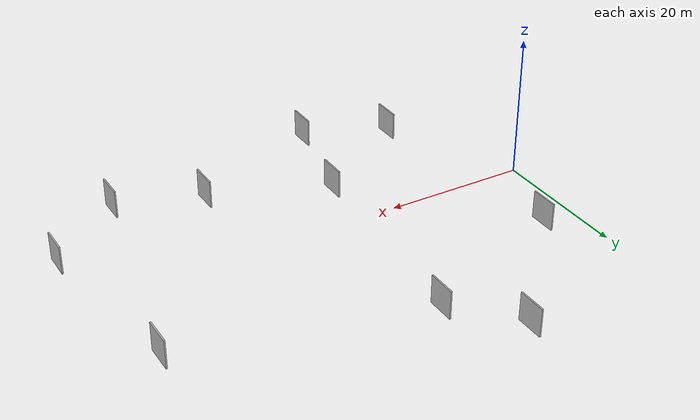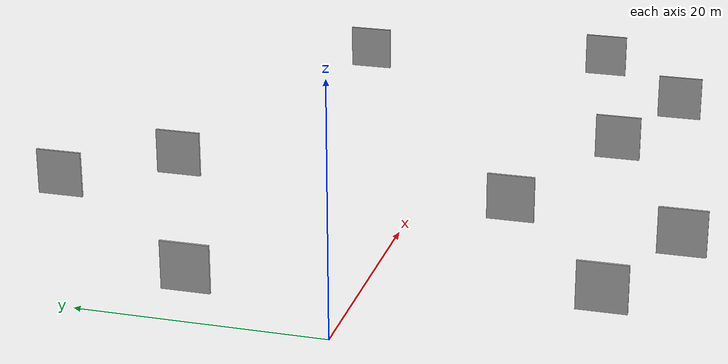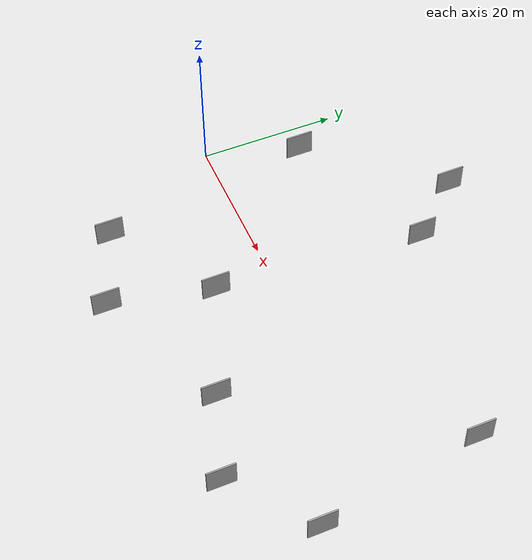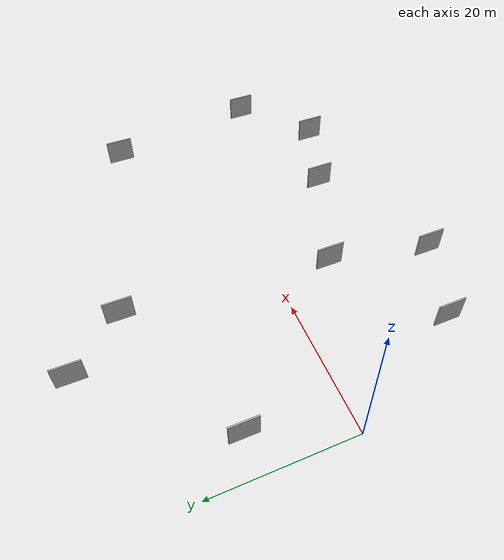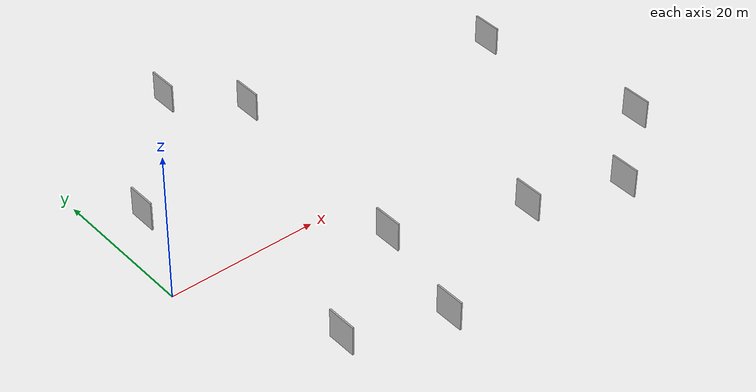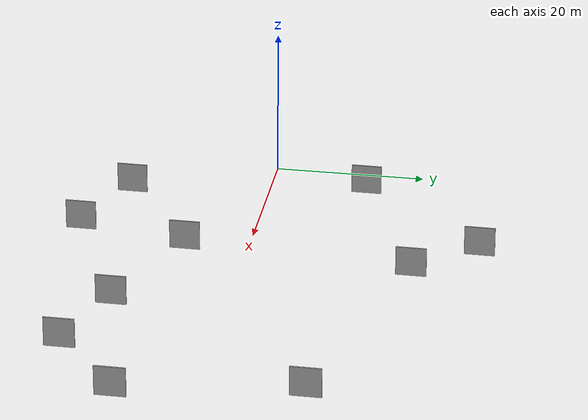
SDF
<sdf version="1.6">
 <world name="default">
  <scene>
   <sky><clouds><speed>12</speed></clouds></sky>
   <ambient>0.4 0.4 0.4 1</ambient>
   <background>0.7 0.7 0.7 1</background>
   <shadows>1</shadows>
  </scene>
  <gravity>0 0 -9.8066</gravity>
  <magnetic_field>6e-06 2.3e-05 -4.2e-05</magnetic_field>
  <physics default="0" name="default_physics" type="ode">
   <ode>
    <solver>
     <type>quick</type>
     <iters>10</iters>
     <sor>1.0</sor>
     <use_dynamic_moi_rescaling>0</use_dynamic_moi_rescaling>
    </solver>
    <constraints>
     <cfm>0</cfm>
     <erp>0.2</erp>
     <contact_max_correcting_vel>100</contact_max_correcting_vel>
     <contact_surface_layer>0.001</contact_surface_layer>
    </constraints>
   </ode>
   <max_step_size>0.004</max_step_size>
   <real_time_factor>1</real_time_factor>
   <real_time_update_rate>250</real_time_update_rate>
  </physics>
  <light name="sun" type="directional">
   <pose>0 0 10 0 0 0</pose>
   <diffuse>0.8 0.8 0.8 1</diffuse>
   <specular>0.2 0.2 0.2 1</specular>
   <attenuation>
    <range>1000</range>
    <constant>0.9</constant>
    <linear>0.01</linear>
    <quadratic>0.001</quadratic>
   </attenuation>
   <direction>-0.5 0.1 -0.9</direction>
  </light>
  <model name="grey_wall_1">
   <static>1</static>
   <pose>41.1137 -14.6424 0.0 0.000000 0.000000 1.570796</pose>
   <link name="link">
    <pose>0 0 2.00 0 0 0</pose>
    <collision name="collision"><geometry><box><size>4.00 0.2 4.00</size></box></geometry></collision>
    <visual name="visual">
     <cast_shadows>0</cast_shadows>
     <geometry><box><size>4.00 0.2 4.00</size></box></geometry>
     <material>
      <script>
       <uri>model://HANNAS_wall/materials/scripts</uri>
       <uri>model://HANNAS_wall/materials/textures</uri>
       <name>vrc/HANNAS_wall</name>
      </script>
     </material>
    </visual>
   </link>
  </model>
  <model name="grey_wall_2">
   <static>1</static>
   <pose>24.8871 -8.2236 0.0 0.000000 0.000000 1.570796</pose>
   <link name="link">
    <pose>0 0 2.00 0 0 0</pose>
    <collision name="collision"><geometry><box><size>4.00 0.2 4.00</size></box></geometry></collision>
    <visual name="visual">
     <cast_shadows>0</cast_shadows>
     <geometry><box><size>4.00 0.2 4.00</size></box></geometry>
     <material>
      <script>
       <uri>model://HANNAS_wall/materials/scripts</uri>
       <uri>model://HANNAS_wall/materials/textures</uri>
       <name>vrc/HANNAS_wall</name>
      </script>
     </material>
    </visual>
   </link>
  </model>
  <model name="grey_wall_3">
   <static>1</static>
   <pose>9.7860 -18.3027 0.0 0.000000 0.000000 1.570796</pose>
   <link name="link">
    <pose>0 0 2.00 0 0 0</pose>
    <collision name="collision"><geometry><box><size>4.00 0.2 4.00</size></box></geometry></collision>
    <visual name="visual">
     <cast_shadows>0</cast_shadows>
     <geometry><box><size>4.00 0.2 4.00</size></box></geometry>
     <material>
      <script>
       <uri>model://HANNAS_wall/materials/scripts</uri>
       <uri>model://HANNAS_wall/materials/textures</uri>
       <name>vrc/HANNAS_wall</name>
      </script>
     </material>
    </visual>
   </link>
  </model>
  <model name="grey_wall_4">
   <static>1</static>
   <pose>5.0495 12.9517 0.0 0.000000 0.000000 1.570796</pose>
   <link name="link">
    <pose>0 0 2.00 0 0 0</pose>
    <collision name="collision"><geometry><box><size>4.00 0.2 4.00</size></box></geometry></collision>
    <visual name="visual">
     <cast_shadows>0</cast_shadows>
     <geometry><box><size>4.00 0.2 4.00</size></box></geometry>
     <material>
      <script>
       <uri>model://HANNAS_wall/materials/scripts</uri>
       <uri>model://HANNAS_wall/materials/textures</uri>
       <name>vrc/HANNAS_wall</name>
      </script>
     </material>
    </visual>
   </link>
  </model>
  <model name="grey_wall_5">
   <static>1</static>
   <pose>63.7325 -9.9472 0.0 0.000000 0.000000 1.570796</pose>
   <link name="link">
    <pose>0 0 2.00 0 0 0</pose>
    <collision name="collision"><geometry><box><size>4.00 0.2 4.00</size></box></geometry></collision>
    <visual name="visual">
     <cast_shadows>0</cast_shadows>
     <geometry><box><size>4.00 0.2 4.00</size></box></geometry>
     <material>
      <script>
       <uri>model://HANNAS_wall/materials/scripts</uri>
       <uri>model://HANNAS_wall/materials/textures</uri>
       <name>vrc/HANNAS_wall</name>
      </script>
     </material>
    </visual>
   </link>
  </model>
  <model name="grey_wall_6">
   <static>1</static>
   <pose>20.2742 30.0493 0.0 0.000000 0.000000 1.570796</pose>
   <link name="link">
    <pose>0 0 2.00 0 0 0</pose>
    <collision name="collision"><geometry><box><size>4.00 0.2 4.00</size></box></geometry></collision>
    <visual name="visual">
     <cast_shadows>0</cast_shadows>
     <geometry><box><size>4.00 0.2 4.00</size></box></geometry>
     <material>
      <script>
       <uri>model://HANNAS_wall/materials/scripts</uri>
       <uri>model://HANNAS_wall/materials/textures</uri>
       <name>vrc/HANNAS_wall</name>
      </script>
     </material>
    </visual>
   </link>
  </model>
  <model name="grey_wall_7">
   <static>1</static>
   <pose>52.9933 -18.6784 0.0 0.000000 0.000000 1.570796</pose>
   <link name="link">
    <pose>0 0 2.00 0 0 0</pose>
    <collision name="collision"><geometry><box><size>4.00 0.2 4.00</size></box></geometry></collision>
    <visual name="visual">
     <cast_shadows>0</cast_shadows>
     <geometry><box><size>4.00 0.2 4.00</size></box></geometry>
     <material>
      <script>
       <uri>model://HANNAS_wall/materials/scripts</uri>
       <uri>model://HANNAS_wall/materials/textures</uri>
       <name>vrc/HANNAS_wall</name>
      </script>
     </material>
    </visual>
   </link>
  </model>
  <model name="grey_wall_8">
   <static>1</static>
   <pose>27.3466 21.9616 0.0 0.000000 0.000000 1.570796</pose>
   <link name="link">
    <pose>0 0 2.00 0 0 0</pose>
    <collision name="collision"><geometry><box><size>4.00 0.2 4.00</size></box></geometry></collision>
    <visual name="visual">
     <cast_shadows>0</cast_shadows>
     <geometry><box><size>4.00 0.2 4.00</size></box></geometry>
     <material>
      <script>
       <uri>model://HANNAS_wall/materials/scripts</uri>
       <uri>model://HANNAS_wall/materials/textures</uri>
       <name>vrc/HANNAS_wall</name>
      </script>
     </material>
    </visual>
   </link>
  </model>
  <model name="grey_wall_9">
   <static>1</static>
   <pose>59.9641 13.4536 0.0 0.000000 0.000000 1.570796</pose>
   <link name="link">
    <pose>0 0 2.00 0 0 0</pose>
    <collision name="collision"><geometry><box><size>4.00 0.2 4.00</size></box></geometry></collision>
    <visual name="visual">
     <cast_shadows>0</cast_shadows>
     <geometry><box><size>4.00 0.2 4.00</size></box></geometry>
     <material>
      <script>
       <uri>model://HANNAS_wall/materials/scripts</uri>
       <uri>model://HANNAS_wall/materials/textures</uri>
       <name>vrc/HANNAS_wall</name>
      </script>
     </material>
    </visual>
   </link>
  </model>
  <model name="grey_wall_10">
   <static>1</static>
   <pose>21.5332 -22.8198 0.0 0.000000 0.000000 1.570796</pose>
   <link name="link">
    <pose>0 0 2.00 0 0 0</pose>
    <collision name="collision"><geometry><box><size>4.00 0.2 4.00</size></box></geometry></collision>
    <visual name="visual">
     <cast_shadows>0</cast_shadows>
     <geometry><box><size>4.00 0.2 4.00</size></box></geometry>
     <material>
      <script>
       <uri>model://HANNAS_wall/materials/scripts</uri>
       <uri>model://HANNAS_wall/materials/textures</uri>
       <name>vrc/HANNAS_wall</name>
      </script>
     </material>
    </visual>
   </link>
  </model>
 </world>
</sdf>
